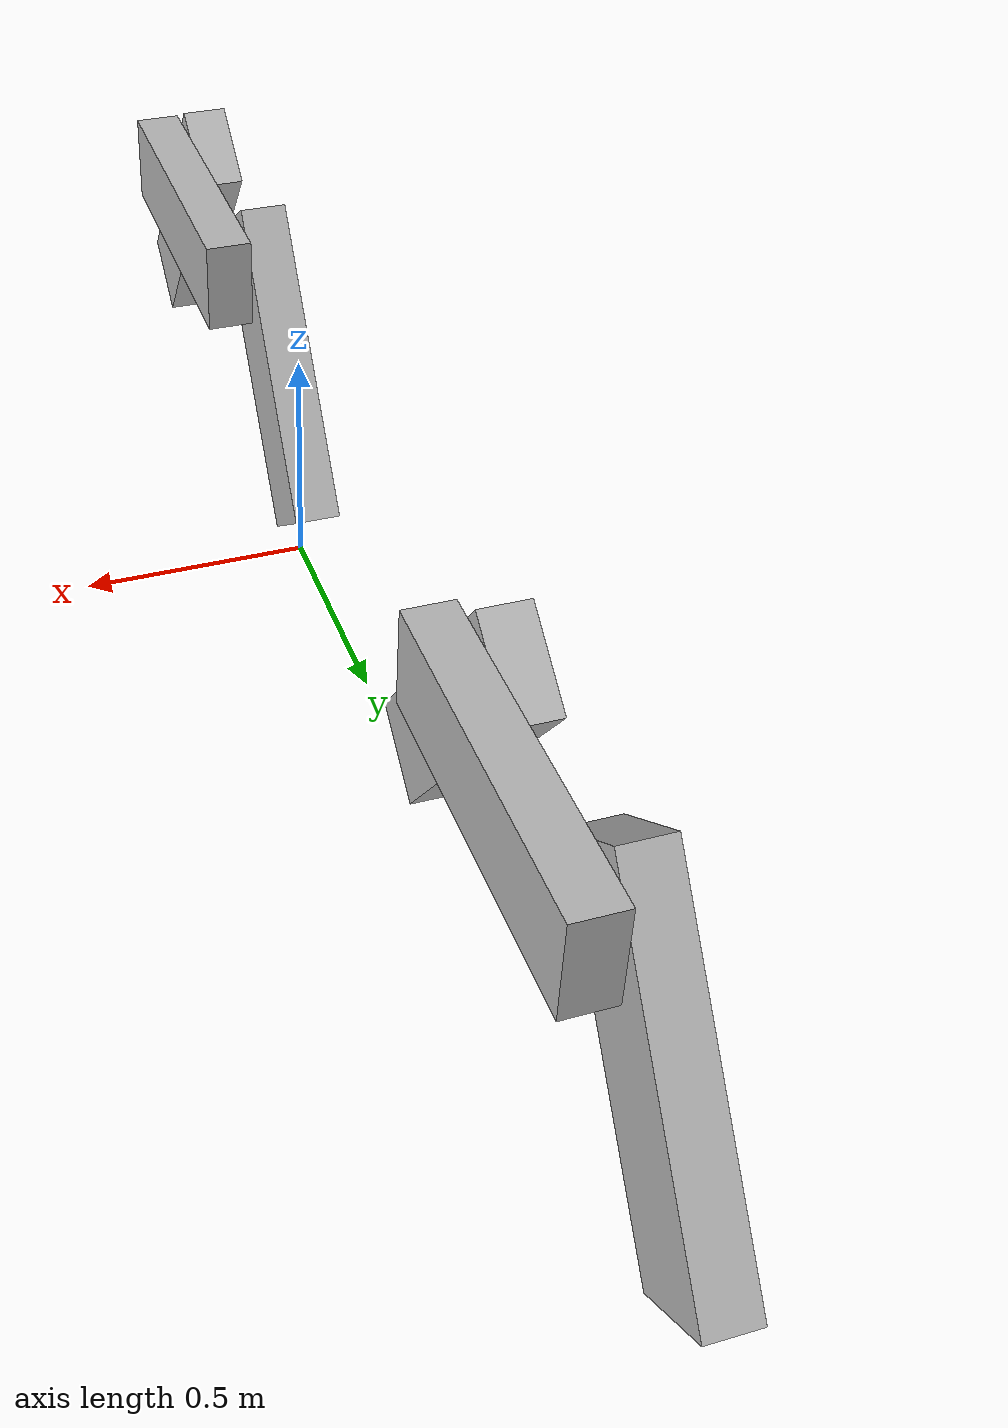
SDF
<?xml version="1.0" ?>
<sdf version='1.6'>
  <world name="default">
    <gravity>0 -9.8 0</gravity>
    <physics type="dart">
      <dart>
        <solver>
          <solver_type>pgs</solver_type>
        </solver>
      </dart>
    </physics>

    <model name="anchored_loop_revolute">
      <link name="link1">
        <pose>0 0.0 0.2 0.6435 0 0</pose>
        <collision name="collision">
          <pose>0 0 0.25 0 0 0</pose>
          <geometry>
            <box>
              <size>0.1 0.2 0.7</size>
            </box>
          </geometry>
        </collision>
        <visual name="visual">
          <pose>0 0 0.25 0 0 0</pose>
          <geometry>
            <box>
              <size>0.1 0.2 0.7</size>
            </box>
          </geometry>
        </visual>
      </link>

      <link name="link2">
        <pose>0.1 -0.3 0.6 1.5708 0 0</pose>
        <collision name="collision">
          <pose>0 0 0.25 0 0 0</pose>
          <geometry>
            <box>
              <size>0.1 0.2 0.7</size>
            </box>
          </geometry>
        </collision>
        <visual name="visual">
          <pose>0 0 0.25 0 0 0</pose>
          <geometry>
            <box>
              <size>0.1 0.2 0.7</size>
            </box>
          </geometry>
        </visual>
      </link>

      <link name="link3">
        <pose>0 -0.8 0.6 2.4981 0 0</pose>
        <collision name="collision">
          <pose>0 0 0.25 0 0 0</pose>
          <geometry>
            <box>
              <size>0.1 0.2 0.7</size>
            </box>
          </geometry>
        </collision>
        <visual name="visual">
          <pose>0 0 0.25 0 0 0</pose>
          <geometry>
            <box>
              <size>0.1 0.2 0.7</size>
            </box>
          </geometry>
        </visual>
      </link>

      <joint name="joint1" type="revolute">
        <parent>world</parent>
        <child>link1</child>
        <axis>
          <xyz>1 0 0</xyz>
        </axis>
      </joint>

      <joint name="joint2" type="revolute">
        <parent>link1</parent>
        <child>link2</child>
        <axis>
          <xyz>1 0 0</xyz>
        </axis>
      </joint>

      <joint name="joint3" type="revolute">
        <parent>link2</parent>
        <child>link3</child>
        <axis>
          <xyz>1 0 0</xyz>
          <dynamics>
            <damping>5</damping>
            <friction>0.1</friction>
          </dynamics>
        </axis>
      </joint>

      <joint name="joint4" type="revolute">
        <pose>0 0 0.5 0 0 0</pose>
        <parent>world</parent>
        <child>link3</child>
        <axis>
          <xyz>1 0 0</xyz>
        </axis>
      </joint>
    </model>

    <model name="anchored_loop_prismatic">
      <pose> 0 2.0 0.0 0.0 0.0 0.0</pose>
      <link name="link1">
        <pose>0 0.0 0.2 0.6435 0 0</pose>
        <collision name="collision">
          <pose>0 0 0.25 0 0 0</pose>
          <geometry>
            <box>
              <size>0.1 0.2 0.7</size>
            </box>
          </geometry>
        </collision>
        <visual name="visual">
          <pose>0 0 0.25 0 0 0</pose>
          <geometry>
            <box>
              <size>0.1 0.2 0.7</size>
            </box>
          </geometry>
        </visual>
      </link>

      <link name="link2">
        <pose>0.1 -0.3 0.6 1.5708 0 0</pose>
        <collision name="collision">
          <pose>0 0 0.25 0 0 0</pose>
          <geometry>
            <box>
              <size>0.1 0.2 0.7</size>
            </box>
          </geometry>
        </collision>
        <visual name="visual">
          <pose>0 0 0.25 0 0 0</pose>
          <geometry>
            <box>
              <size>0.1 0.2 0.7</size>
            </box>
          </geometry>
        </visual>
      </link>

      <link name="link3">
        <pose>0 -0.8 0.6 2.4981 0 0</pose>
        <collision name="collision">
          <pose>0 0 0.25 0 0 0</pose>
          <geometry>
            <box>
              <size>0.1 0.2 0.7</size>
            </box>
          </geometry>
        </collision>
        <visual name="visual">
          <pose>0 0 0.25 0 0 0</pose>
          <geometry>
            <box>
              <size>0.1 0.2 0.7</size>
            </box>
          </geometry>
        </visual>
      </link>

      <joint name="joint1" type="revolute">
        <parent>world</parent>
        <child>link1</child>
        <axis>
          <xyz>1 0 0</xyz>
        </axis>
      </joint>

      <joint name="joint2" type="revolute">
        <parent>link1</parent>
        <child>link2</child>
        <axis>
          <xyz>1 0 0</xyz>
        </axis>
      </joint>

      <joint name="joint3" type="revolute">
        <pose>0 0 0.0 -2.0 0 0</pose>
        <parent>link2</parent>
        <child>link3</child>
        <axis>
          <xyz>1 0 0</xyz>
          <dynamics>
            <damping>5</damping>
            <friction>0.1</friction>
          </dynamics>
        </axis>
      </joint>

      <joint name="joint4" type="prismatic">
        <pose>0 0 0.5 0.6 0 0</pose>
        <parent>world</parent>
        <child>link3</child>
        <axis>
          <xyz>0 1 0</xyz>
        </axis>
      </joint>
      <plugin
        filename="gz-sim-joint-state-publisher-system"
        name="gz::sim::systems::JointStatePublisher">
        <!-- Optional: restrict to specific joints. Omit to publish ALL joints. -->
        <joint_name>joint3</joint_name>
        <!-- Optional: custom topic. Default is the long world/model path below. -->
        <topic>joint_states</topic>
      </plugin>
    </model>

  </world>
</sdf>
